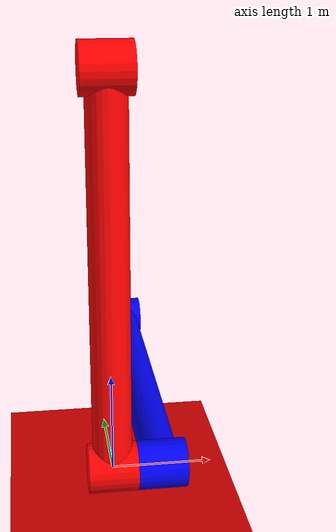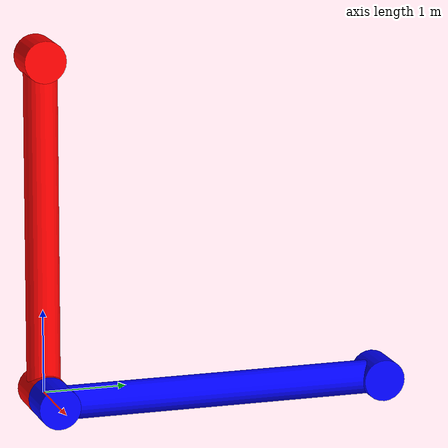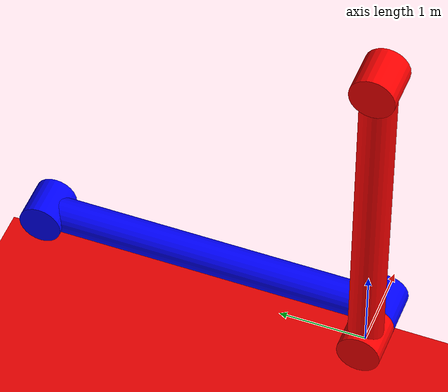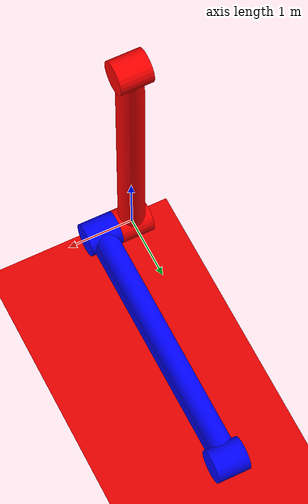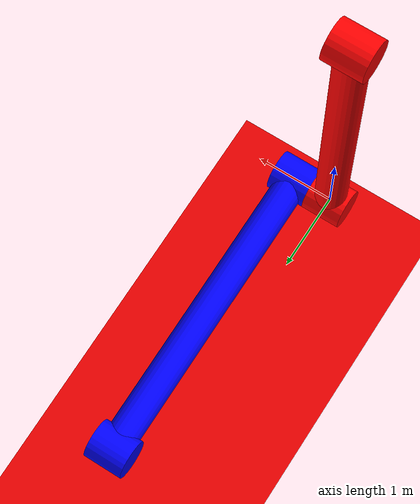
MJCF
<mujoco>
    <option gravity="0 0 0" timestep="0.002"/>
    <asset>
        <material name="blue_" rgba="0 0 1 1" />
        <material name="green" rgba="0 1 0 1" />
        <material name="red__" rgba="1 0 0 1" />
        <material name="white" rgba="1 1 1 1" />
    </asset>
    <worldbody>
        <geom type="plane" size="10 10 0.1" pos="0 0 -2" rgba=".9 0 0 1" />
        <light diffuse=".5 .5 .5" pos="0 0 3" dir="0 0 -1" />
        <body name="link_1" pos="0 0 0">
            <geom type="cylinder" size=".2    2" pos="0 0 2" euler="0 0 0" material="red__" />
            <geom type="cylinder" size=".25 .25" pos="0 0 4" euler="0 90 0" material="red__" />
            <geom type="cylinder" size=".25 .25" pos="0 0 0" euler="0 90 0" material="red__" />
            <body name="link_2" pos="0.5 0 0" euler="0 0 0">
                <joint name="hinge_1" pos="0 0 0" axis="1 0 0"  ref="-30" limited="true" range="-90 90"/>
                <geom type="cylinder" size=".2    2" pos="0 2 0" euler="90 0 0" material="blue_" />
                <geom type="cylinder" size=".25 .25" pos="0 4 0" euler="0 90 0" material="blue_" />
                <geom type="cylinder" size=".25 .25" pos="0 0 0" euler="0 90 0" material="blue_" />
            </body>
        </body>
    </worldbody>
    <equality>
    </equality>
</mujoco>
